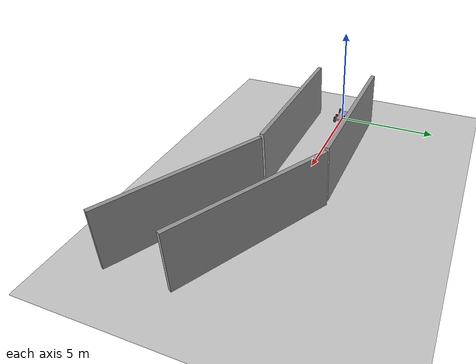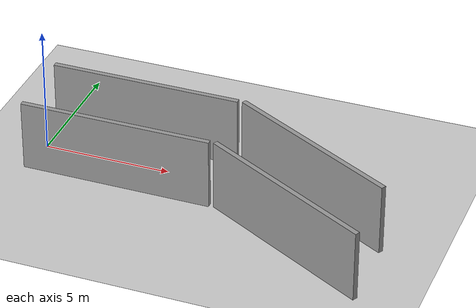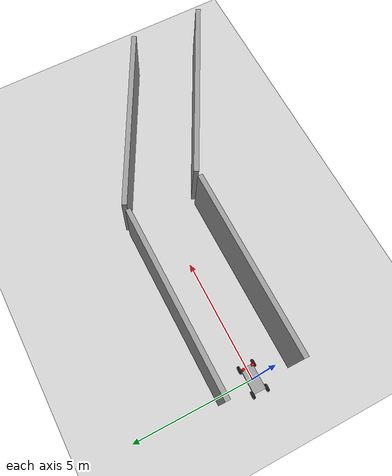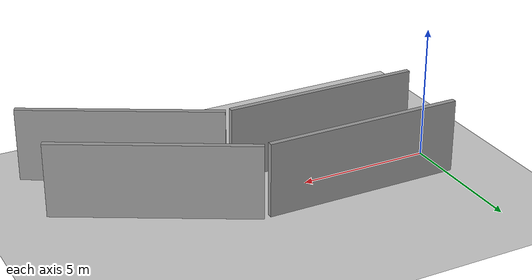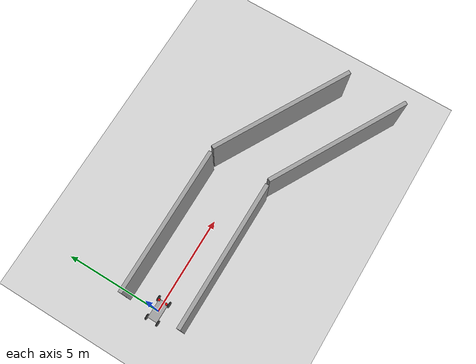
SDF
<?xml version="1.0" ?>
<sdf version="1.4">
  <world name="laser_scan_walls">
    <physics type='ode'>
      <ode>
        <solver>
          <type>quick</type>
          <iters>1000</iters>
          <sor>1.3</sor>
        </solver>
        <constraints>
          <cfm>0</cfm>
          <erp>0.2</erp>
          <contact_max_correcting_vel>100</contact_max_correcting_vel>
          <contact_surface_layer>0.001</contact_surface_layer>
        </constraints>
      </ode>
      <max_step_size>0.01</max_step_size>
      <real_time_factor>1</real_time_factor>
      <real_time_update_rate>100</real_time_update_rate>
      <gravity>0 0 -9.8</gravity>
    </physics>

    <include>
      <uri>model://ground_plane</uri>
    </include>

    <include>
      <uri>model://sun</uri>
    </include>

    <include>
      <uri>model://cart_front_steer_two_lasers</uri>
    </include>

    <include>
      <uri>model://grey_wall</uri>
      <pose>3.5 1.5 0 0 0 0</pose>
    </include>

    <include>
      <uri>model://grey_wall</uri>
      <pose>3.5 -1.5 0 0 0 0</pose>
    </include>

    <include>
      <uri>model://grey_wall</uri>
      <pose>10.75 -0.25 0 0 0 -0.5</pose>
    </include>

    <include>
      <uri>model://grey_wall</uri>
      <pose>10.75 -3.25 0 0 0 -0.5</pose>
    </include>
  </world>
</sdf>

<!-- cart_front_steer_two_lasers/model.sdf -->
<sdf version="1.5">
  <model name="cart_front_steer">
    <link name="chassis">
      <pose>0 0 0.15  0 0 0</pose>
      <inertial>
        <pose>0 0 0  0 0 0</pose>
        <mass>5</mass>
        <inertia>
          <ixx>0.21666666666666667</ixx>
          <iyy>0.8416666666666667</iyy>
          <izz>1.0416666666666667</izz>
          <ixy>0</ixy>
          <ixz>0</ixz>
          <iyz>0</iyz>
        </inertia>
      </inertial>
      <collision name="collision">
        <geometry>
          <box>
            <size>1.0 0.5 0.1</size>
          </box>
        </geometry>
      </collision>
      <visual name="visual">
        <geometry>
          <box>
            <size>1.0 0.5 0.1</size>
          </box>
        </geometry>
        <material>
          <script>
            <uri>file://media/materials/scripts/gazebo.material</uri>
            <name>Gazebo/Grey</name>
          </script>
        </material>
      </visual>
    </link>

    <link name="wheel_front_left">
      <pose>0.5 0.298 0.15  -1.5707963267948966 -0.08726646259971647 0</pose>
      <inertial>
        <mass>0.5</mass>
        <inertia>
          <ixx>0.0030791666666666667</ixx>
          <iyy>0.0030791666666666667</iyy>
          <izz>0.005625</izz>
          <ixy>0</ixy>
          <ixz>0</ixz>
          <iyz>0</iyz>
        </inertia>
      </inertial>
      <collision name="collision">
        <geometry>
          <cylinder>
            <radius>0.15</radius>
            <length>0.08</length>
          </cylinder>
        </geometry>
      </collision>
      <visual name="visual">
        <geometry>
          <cylinder>
            <radius>0.15</radius>
            <length>0.08</length>
          </cylinder>
        </geometry>
        <material>
          <script>
            <uri>file://media/materials/scripts/gazebo.material</uri>
            <name>Gazebo/Black</name>
          </script>
        </material>
      </visual>
    </link>

    <joint name="wheel_front_left_steer_spin" type="fixed">
      <parent>chassis</parent>
      <child>wheel_front_left</child>
      <axis>
        <xyz>0 0 -1</xyz>
      </axis>
    </joint>

    <link name="wheel_front_right">
      <pose>0.5 -0.298 0.15  -1.5707963267948966 -0.08726646259971647 0</pose>
      <inertial>
        <mass>0.5</mass>
        <inertia>
          <ixx>0.0030791666666666667</ixx>
          <iyy>0.0030791666666666667</iyy>
          <izz>0.005625</izz>
          <ixy>0</ixy>
          <ixz>0</ixz>
          <iyz>0</iyz>
        </inertia>
      </inertial>
      <collision name="collision">
        <geometry>
          <cylinder>
            <radius>0.15</radius>
            <length>0.08</length>
          </cylinder>
        </geometry>
      </collision>
      <visual name="visual">
        <geometry>
          <cylinder>
            <radius>0.15</radius>
            <length>0.08</length>
          </cylinder>
        </geometry>
        <material>
          <script>
            <uri>file://media/materials/scripts/gazebo.material</uri>
            <name>Gazebo/Black</name>
          </script>
        </material>
      </visual>
    </link>

    <joint name="wheel_front_right_steer_spin" type="fixed">
      <parent>chassis</parent>
      <child>wheel_front_right</child>
      <axis>
        <xyz>0 0 1</xyz>
      </axis>
    </joint>

    <link name="wheel_rear_left">
      <pose>-0.5 0.298 0.15  -1.5707963267948966 0 0</pose>
      <inertial>
        <mass>0.5</mass>
        <inertia>
          <ixx>0.0030791666666666667</ixx>
          <iyy>0.0030791666666666667</iyy>
          <izz>0.005625</izz>
          <ixy>0</ixy>
          <ixz>0</ixz>
          <iyz>0</iyz>
        </inertia>
      </inertial>
      <collision name="collision">
        <geometry>
          <cylinder>
            <radius>0.15</radius>
            <length>0.08</length>
          </cylinder>
        </geometry>
      </collision>
      <visual name="visual">
        <geometry>
          <cylinder>
            <radius>0.15</radius>
            <length>0.08</length>
          </cylinder>
        </geometry>
        <material>
          <script>
            <uri>file://media/materials/scripts/gazebo.material</uri>
            <name>Gazebo/Black</name>
          </script>
        </material>
      </visual>
    </link>

    <joint name="wheel_rear_left_spin" type="fixed">
      <parent>chassis</parent>
      <child>wheel_rear_left</child>
      <axis>
        <xyz>0 0 -1</xyz>
      </axis>
    </joint>

    <link name="wheel_rear_right">
      <pose>-0.5 -0.298 0.15  -1.5707963267948966 0 0</pose>
      <inertial>
        <mass>0.5</mass>
        <inertia>
          <ixx>0.0030791666666666667</ixx>
          <iyy>0.0030791666666666667</iyy>
          <izz>0.005625</izz>
          <ixy>0</ixy>
          <ixz>0</ixz>
          <iyz>0</iyz>
        </inertia>
      </inertial>
      <collision name="collision">
        <geometry>
          <cylinder>
            <radius>0.15</radius>
            <length>0.08</length>
          </cylinder>
        </geometry>
      </collision>
      <visual name="visual">
        <geometry>
          <cylinder>
            <radius>0.15</radius>
            <length>0.08</length>
          </cylinder>
        </geometry>
        <material>
          <script>
            <uri>file://media/materials/scripts/gazebo.material</uri>
            <name>Gazebo/Black</name>
          </script>
        </material>
      </visual>
    </link>

    <joint name="wheel_rear_right_spin" type="fixed">
      <parent>chassis</parent>
      <child>wheel_rear_right</child>
      <axis>
        <xyz>0 0 1</xyz>
      </axis>
    </joint>

    <link name="left_laser_sensor_link">
      <pose>0.45 0.2 0.4 0 0 0.349066</pose>
      <collision name="collision">
        <geometry>
          <box>
            <size>0.1 0.1 0.1</size>
          </box>
        </geometry>
      </collision>
      <visual name="visual">
        <geometry>
          <box>
            <size>0.1 0.1 0.1</size>
          </box>
        </geometry>
        <material name="orange">
          <ambient>1 0 0 1</ambient>
          <diffuse>1 0 0 1</diffuse>
          <specular>0.1 0.1 0.1 1</specular>
        </material>
      </visual>
      <sensor type="ray" name="ray_left">
	<pose>0 0 0 0 0 0</pose>
        <update_rate>35.0</update_rate>
	<visualize>true</visualize>
        <ray name="laser_scan_left">
          <scan>
            <horizontal>
              <samples>360</samples>
              <resolution>1</resolution>
              <min_angle>-0.4974188</min_angle>
              <max_angle>0.4974188</max_angle>
            </horizontal>
          </scan>
          <range>
            <min>0.3</min>
            <max>2.0</max>
            <resolution>0.01</resolution>
          </range>
        </ray>
        <plugin name="laser_scan_controller_left" filename="libgazebo_ros_laser.so">
          <frameName>camera_left</frameName>
          <topicName>scan</topicName>
        </plugin>
      </sensor>
    </link>

    <joint name="laser_sensor_joint_left" type="fixed">
      <parent>chassis</parent>
      <child>left_laser_sensor_link</child>
      <axis>
        <xyz>0 0 1</xyz>
      </axis>
    </joint>

    <link name="right_laser_sensor_link">
      <pose>0.45 -0.2 0.4 0 0 -0.349066</pose>
      <collision name="collision">
        <geometry>
          <box>
            <size>0.1 0.1 0.1</size>
          </box>
        </geometry>
      </collision>
      <visual name="visual">
        <geometry>
          <box>
            <size>0.1 0.1 0.1</size>
          </box>
        </geometry>
        <material name="orange">
          <ambient>1 0 0 1</ambient>
          <diffuse>1 0 0 1</diffuse>
          <specular>0.1 0.1 0.1 1</specular>
        </material>
      </visual>
      <sensor type="ray" name="ray_right">
	<pose>0 0 0 0 0 0</pose>
        <update_rate>35.0</update_rate>
	<visualize>true</visualize>
        <ray name="laser_scan_right">
          <scan>
            <horizontal>
              <samples>360</samples>
              <resolution>1</resolution>
              <min_angle>-0.4974188</min_angle>
              <max_angle>0.4974188</max_angle>
            </horizontal>
          </scan>
          <range>
            <min>0.3</min>
            <max>2.0</max>
            <resolution>0.01</resolution>
          </range>
        </ray>
        <plugin name="laser_scan_controller_right" filename="libgazebo_ros_laser.so">
          <frameName>camera_right</frameName>
          <topicName>scan</topicName>
        </plugin>
      </sensor>
    </link>

    <joint name="laser_sensor_joint_right" type="fixed">
      <parent>chassis</parent>
      <child>right_laser_sensor_link</child>
      <axis>
        <xyz>0 0 1</xyz>
      </axis>
    </joint>

    <link name="left_camera_link">
      <pose>0.45 0.2 0.4 0 0 0.349066</pose>
      <collision name="collision">
        <geometry>
          <box>
            <size>0.1 0.1 0.1</size>
          </box>
        </geometry>
      </collision>
      <visual name="visual">
        <geometry>
          <box>
            <size>0.1 0.1 0.1</size>
          </box>
        </geometry>
        <material name="orange">
          <ambient>1 0 0 1</ambient>
          <diffuse>1 0 0 1</diffuse>
          <specular>0.1 0.1 0.1 1</specular>
        </material>
      </visual>
      <sensor type="camera" name="camera_left">
	<pose>0 0 0 0 0 0</pose>
        <update_rate>30.0</update_rate>
        <camera name="left_camera">
	  <pose>0 0 0 0 0 0</pose>
          <horizontal_fov>1.55</horizontal_fov>
          <image>
            <width>640</width>
            <height>480</height>
            <format>L8</format>
          </image>
          <clip>
            <near>0.02</near>
            <far>50</far>
          </clip>
	  <noise>
            <type>gaussian</type>
            <mean>0.0</mean>
            <stddev>0.007</stddev>
          </noise>
        </camera>
        <plugin name="left_camera_controller" filename="libgazebo_ros_camera.so">
          <alwaysOn>true</alwaysOn>
          <updateRate>30.0</updateRate>
          <cameraName>gazebo_left_camera</cameraName>
          <imageTopicName>image_raw</imageTopicName>
          <cameraInfoTopicName>camera_info</cameraInfoTopicName>
          <hackBaseline>0.07</hackBaseline>
          <frameName>left_camera_link</frameName>
        </plugin>
      </sensor>
    </link>

    <joint name="camera_joint_left" type="fixed">
      <parent>chassis</parent>
      <child>left_camera_link</child>
      <axis>
        <xyz>0 0 1</xyz>
      </axis>
    </joint>

    <link name="right_camera_link">
      <pose>0.45 -0.2 0.4 0 0 -0.349066</pose>
      <collision name="collision">
        <geometry>
          <box>
            <size>0.1 0.1 0.1</size>
          </box>
        </geometry>
      </collision>
      <visual name="visual">
        <geometry>
          <box>
            <size>0.1 0.1 0.1</size>
          </box>
        </geometry>
        <material name="orange">
          <ambient>1 0 0 1</ambient>
          <diffuse>1 0 0 1</diffuse>
          <specular>0.1 0.1 0.1 1</specular>
        </material>
      </visual>
      <sensor type="camera" name="camera_right">
	<pose>0 0 0 0 0 0</pose>
        <update_rate>30.0</update_rate>
        <camera name="right_camera">
	  <pose>0 0 0 0 0 0</pose>
          <horizontal_fov>1.55</horizontal_fov>
          <image>
            <width>640</width>
            <height>480</height>
            <format>L8</format>
          </image>
          <clip>
            <near>0.02</near>
            <far>50</far>
          </clip>
	  <noise>
            <type>gaussian</type>
            <mean>0.0</mean>
            <stddev>0.007</stddev>
          </noise>
        </camera>
        <plugin name="right_camera_controller" filename="libgazebo_ros_camera.so">
          <alwaysOn>true</alwaysOn>
          <updateRate>30.0</updateRate>
          <cameraName>gazebo_right_camera</cameraName>
          <imageTopicName>image_raw</imageTopicName>
          <cameraInfoTopicName>camera_info</cameraInfoTopicName>
          <hackBaseline>0.07</hackBaseline>
          <frameName>right_camera_link</frameName>
        </plugin>
      </sensor>
    </link>

    <joint name="camera_joint_right" type="fixed">
      <parent>chassis</parent>
      <child>right_camera_link</child>
      <axis>
        <xyz>0 0 1</xyz>
      </axis>
    </joint>

  </model>
</sdf>

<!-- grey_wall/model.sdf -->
<sdf version="1.5">
  <model name="grey_wall">
    <static>true</static>
    <link name="link">
      <pose>0 0 1.4 0 0 0</pose>
      <collision name="collision">
        <geometry>
          <box>
            <size>7.5 0.2 2.8</size>
          </box>
        </geometry>
      </collision>
      <visual name="visual">
        <cast_shadows>false</cast_shadows>
        <geometry>
          <box>
            <size>7.5 0.2 2.8</size>
          </box>
        </geometry>
        <material>
          <script>
            <uri>model://../model_source/models/grey_wall/materials/scripts</uri>
            <uri>model://../model_source/models/grey_wall/materials/textures</uri>
            <name>vrc/grey_wall</name>
          </script>
        </material>
      </visual>
    </link>
  </model>
</sdf>
